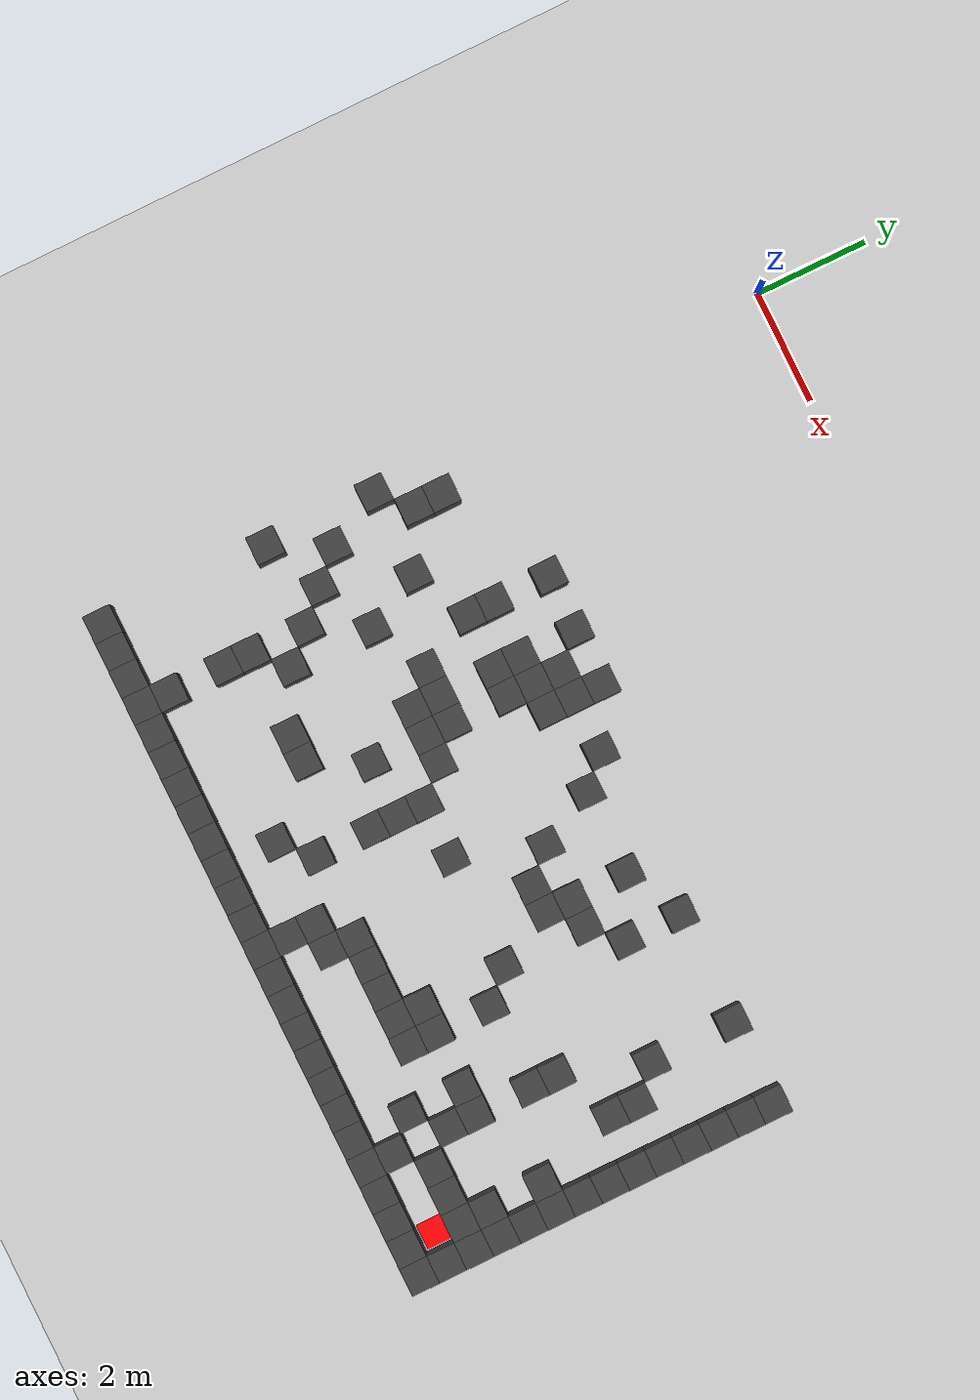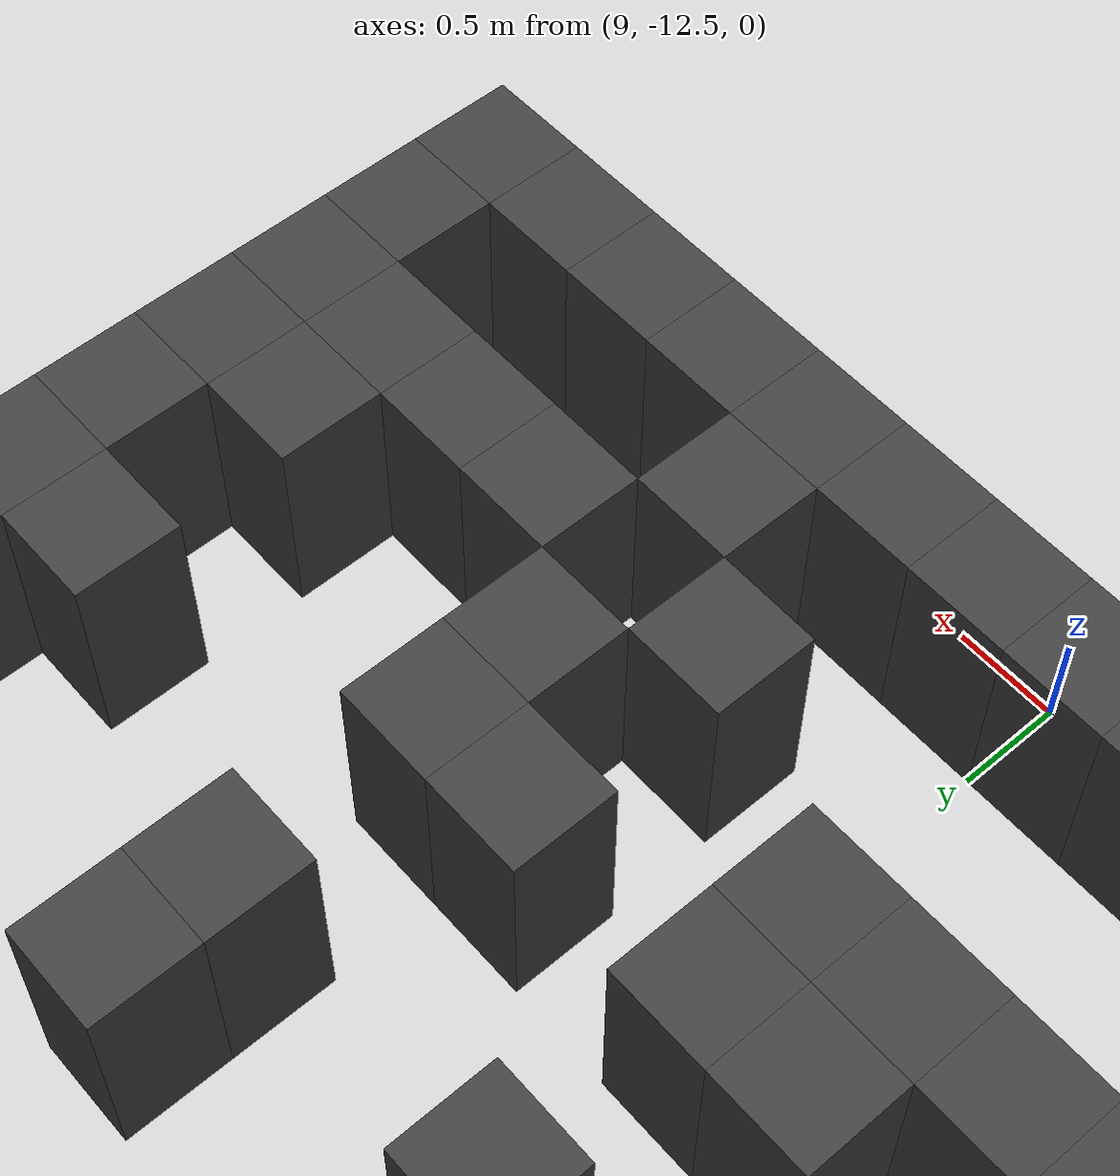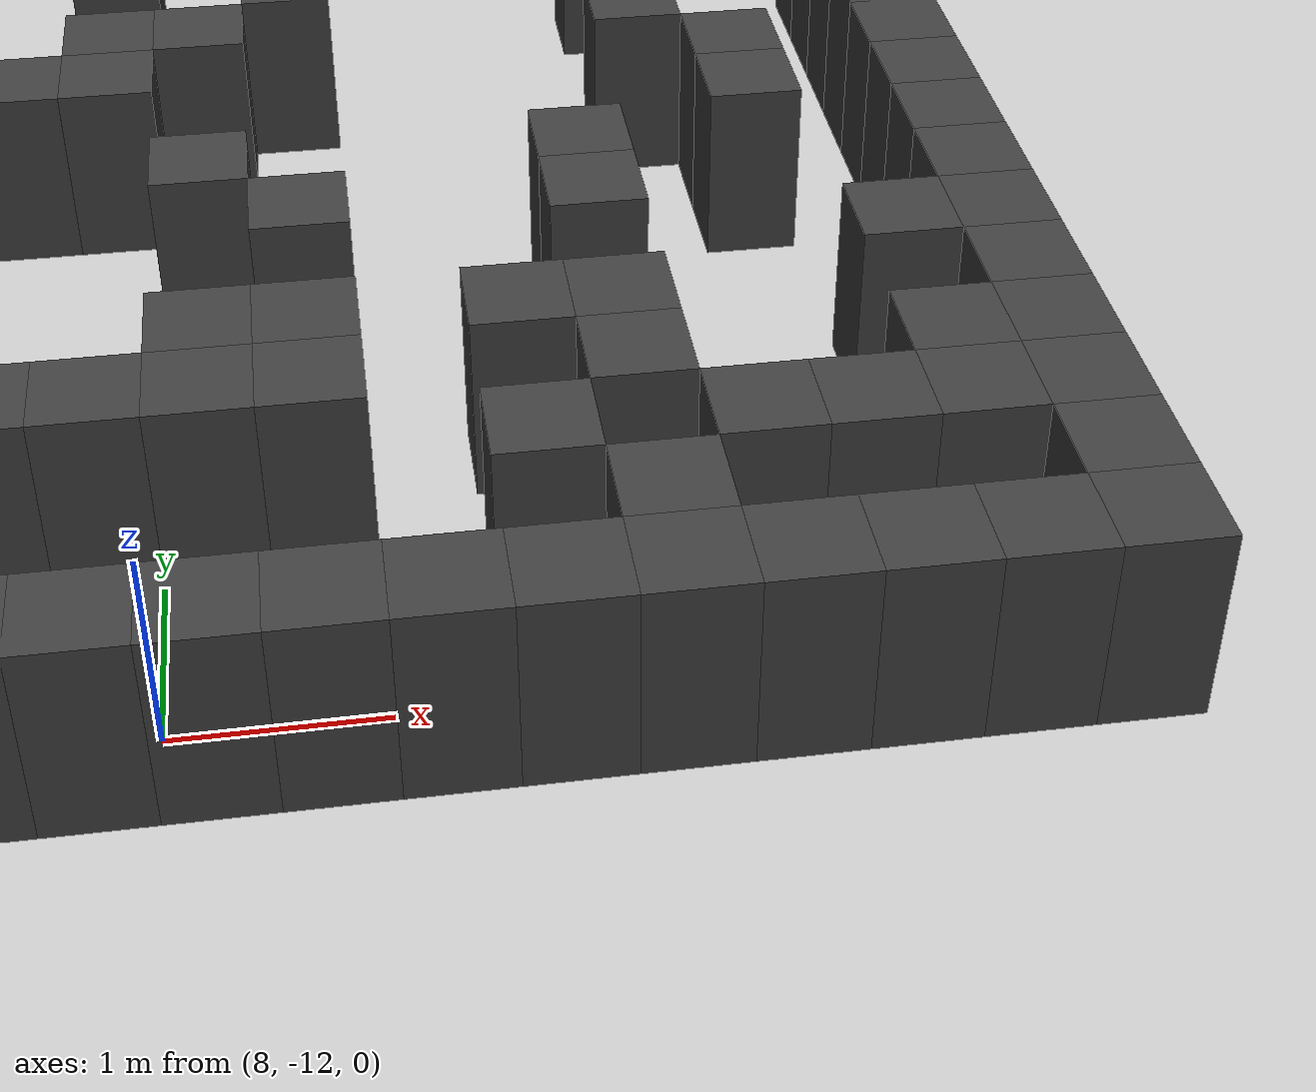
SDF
<sdf version="1.7">
 <world name="map_4581">
  <model name="ground_plane">
   <static>true</static>
   <link name="link">
    <collision name="collision">
     <geometry><plane><normal>0 0 1</normal><size>200 200</size></plane></geometry>
    </collision>
    <visual name="visual">
     <geometry><plane><normal>0 0 1</normal><size>200 200</size></plane></geometry>
     <material><ambient>0.8 0.8 0.8 1</ambient><diffuse>0.8 0.8 0.8 1</diffuse></material>
    </visual>
   </link>
  </model>
  <model name="maze_environment">
   <static>true</static>
   <link name="wall_482">
    <pose>2.750 -5.250 0.500 0 0 0</pose>
    <collision name="col"><geometry><box><size>0.5 0.5 1.0</size></box></geometry></collision>
    <visual name="vis">
     <geometry><box><size>0.5 0.5 1.0</size></box></geometry>
     <material><ambient>0.15 0.15 0.15 1</ambient><diffuse>0.25 0.25 0.25 1</diffuse></material>
    </visual>
   </link>
   <link name="wall_483">
    <pose>3.750 -5.250 0.500 0 0 0</pose>
    <collision name="col"><geometry><box><size>0.5 0.5 1.0</size></box></geometry></collision>
    <visual name="vis">
     <geometry><box><size>0.5 0.5 1.0</size></box></geometry>
     <material><ambient>0.15 0.15 0.15 1</ambient><diffuse>0.25 0.25 0.25 1</diffuse></material>
    </visual>
   </link>
   <link name="wall_484">
    <pose>4.750 -5.250 0.500 0 0 0</pose>
    <collision name="col"><geometry><box><size>0.5 0.5 1.0</size></box></geometry></collision>
    <visual name="vis">
     <geometry><box><size>0.5 0.5 1.0</size></box></geometry>
     <material><ambient>0.15 0.15 0.15 1</ambient><diffuse>0.25 0.25 0.25 1</diffuse></material>
    </visual>
   </link>
   <link name="wall_495">
    <pose>4.250 -5.750 0.500 0 0 0</pose>
    <collision name="col"><geometry><box><size>0.5 0.5 1.0</size></box></geometry></collision>
    <visual name="vis">
     <geometry><box><size>0.5 0.5 1.0</size></box></geometry>
     <material><ambient>0.15 0.15 0.15 1</ambient><diffuse>0.25 0.25 0.25 1</diffuse></material>
    </visual>
   </link>
   <link name="wall_496">
    <pose>4.750 -5.750 0.500 0 0 0</pose>
    <collision name="col"><geometry><box><size>0.5 0.5 1.0</size></box></geometry></collision>
    <visual name="vis">
     <geometry><box><size>0.5 0.5 1.0</size></box></geometry>
     <material><ambient>0.15 0.15 0.15 1</ambient><diffuse>0.25 0.25 0.25 1</diffuse></material>
    </visual>
   </link>
   <link name="wall_497">
    <pose>5.750 -5.750 0.500 0 0 0</pose>
    <collision name="col"><geometry><box><size>0.5 0.5 1.0</size></box></geometry></collision>
    <visual name="vis">
     <geometry><box><size>0.5 0.5 1.0</size></box></geometry>
     <material><ambient>0.15 0.15 0.15 1</ambient><diffuse>0.25 0.25 0.25 1</diffuse></material>
    </visual>
   </link>
   <link name="wall_498">
    <pose>8.750 -5.750 0.500 0 0 0</pose>
    <collision name="col"><geometry><box><size>0.5 0.5 1.0</size></box></geometry></collision>
    <visual name="vis">
     <geometry><box><size>0.5 0.5 1.0</size></box></geometry>
     <material><ambient>0.15 0.15 0.15 1</ambient><diffuse>0.25 0.25 0.25 1</diffuse></material>
    </visual>
   </link>
   <link name="wall_499">
    <pose>10.750 -5.750 0.500 0 0 0</pose>
    <collision name="col"><geometry><box><size>0.5 0.5 1.0</size></box></geometry></collision>
    <visual name="vis">
     <geometry><box><size>0.5 0.5 1.0</size></box></geometry>
     <material><ambient>0.15 0.15 0.15 1</ambient><diffuse>0.25 0.25 0.25 1</diffuse></material>
    </visual>
   </link>
   <link name="wall_500">
    <pose>12.250 -5.750 0.500 0 0 0</pose>
    <collision name="col"><geometry><box><size>0.5 0.5 1.0</size></box></geometry></collision>
    <visual name="vis">
     <geometry><box><size>0.5 0.5 1.0</size></box></geometry>
     <material><ambient>0.15 0.15 0.15 1</ambient><diffuse>0.25 0.25 0.25 1</diffuse></material>
    </visual>
   </link>
   <link name="wall_508">
    <pose>0.750 -6.250 0.500 0 0 0</pose>
    <collision name="col"><geometry><box><size>0.5 0.5 1.0</size></box></geometry></collision>
    <visual name="vis">
     <geometry><box><size>0.5 0.5 1.0</size></box></geometry>
     <material><ambient>0.15 0.15 0.15 1</ambient><diffuse>0.25 0.25 0.25 1</diffuse></material>
    </visual>
   </link>
   <link name="wall_509">
    <pose>2.750 -6.250 0.500 0 0 0</pose>
    <collision name="col"><geometry><box><size>0.5 0.5 1.0</size></box></geometry></collision>
    <visual name="vis">
     <geometry><box><size>0.5 0.5 1.0</size></box></geometry>
     <material><ambient>0.15 0.15 0.15 1</ambient><diffuse>0.25 0.25 0.25 1</diffuse></material>
    </visual>
   </link>
   <link name="wall_510">
    <pose>3.750 -6.250 0.500 0 0 0</pose>
    <collision name="col"><geometry><box><size>0.5 0.5 1.0</size></box></geometry></collision>
    <visual name="vis">
     <geometry><box><size>0.5 0.5 1.0</size></box></geometry>
     <material><ambient>0.15 0.15 0.15 1</ambient><diffuse>0.25 0.25 0.25 1</diffuse></material>
    </visual>
   </link>
   <link name="wall_511">
    <pose>4.250 -6.250 0.500 0 0 0</pose>
    <collision name="col"><geometry><box><size>0.5 0.5 1.0</size></box></geometry></collision>
    <visual name="vis">
     <geometry><box><size>0.5 0.5 1.0</size></box></geometry>
     <material><ambient>0.15 0.15 0.15 1</ambient><diffuse>0.25 0.25 0.25 1</diffuse></material>
    </visual>
   </link>
   <link name="wall_512">
    <pose>4.750 -6.250 0.500 0 0 0</pose>
    <collision name="col"><geometry><box><size>0.5 0.5 1.0</size></box></geometry></collision>
    <visual name="vis">
     <geometry><box><size>0.5 0.5 1.0</size></box></geometry>
     <material><ambient>0.15 0.15 0.15 1</ambient><diffuse>0.25 0.25 0.25 1</diffuse></material>
    </visual>
   </link>
   <link name="wall_513">
    <pose>6.250 -6.250 0.500 0 0 0</pose>
    <collision name="col"><geometry><box><size>0.5 0.5 1.0</size></box></geometry></collision>
    <visual name="vis">
     <geometry><box><size>0.5 0.5 1.0</size></box></geometry>
     <material><ambient>0.15 0.15 0.15 1</ambient><diffuse>0.25 0.25 0.25 1</diffuse></material>
    </visual>
   </link>
   <link name="wall_514">
    <pose>7.750 -6.250 0.500 0 0 0</pose>
    <collision name="col"><geometry><box><size>0.5 0.5 1.0</size></box></geometry></collision>
    <visual name="vis">
     <geometry><box><size>0.5 0.5 1.0</size></box></geometry>
     <material><ambient>0.15 0.15 0.15 1</ambient><diffuse>0.25 0.25 0.25 1</diffuse></material>
    </visual>
   </link>
   <link name="wall_515">
    <pose>12.250 -6.250 0.500 0 0 0</pose>
    <collision name="col"><geometry><box><size>0.5 0.5 1.0</size></box></geometry></collision>
    <visual name="vis">
     <geometry><box><size>0.5 0.5 1.0</size></box></geometry>
     <material><ambient>0.15 0.15 0.15 1</ambient><diffuse>0.25 0.25 0.25 1</diffuse></material>
    </visual>
   </link>
   <link name="wall_519">
    <pose>0.750 -6.750 0.500 0 0 0</pose>
    <collision name="col"><geometry><box><size>0.5 0.5 1.0</size></box></geometry></collision>
    <visual name="vis">
     <geometry><box><size>0.5 0.5 1.0</size></box></geometry>
     <material><ambient>0.15 0.15 0.15 1</ambient><diffuse>0.25 0.25 0.25 1</diffuse></material>
    </visual>
   </link>
   <link name="wall_520">
    <pose>2.750 -6.750 0.500 0 0 0</pose>
    <collision name="col"><geometry><box><size>0.5 0.5 1.0</size></box></geometry></collision>
    <visual name="vis">
     <geometry><box><size>0.5 0.5 1.0</size></box></geometry>
     <material><ambient>0.15 0.15 0.15 1</ambient><diffuse>0.25 0.25 0.25 1</diffuse></material>
    </visual>
   </link>
   <link name="wall_521">
    <pose>3.750 -6.750 0.500 0 0 0</pose>
    <collision name="col"><geometry><box><size>0.5 0.5 1.0</size></box></geometry></collision>
    <visual name="vis">
     <geometry><box><size>0.5 0.5 1.0</size></box></geometry>
     <material><ambient>0.15 0.15 0.15 1</ambient><diffuse>0.25 0.25 0.25 1</diffuse></material>
    </visual>
   </link>
   <link name="wall_522">
    <pose>4.250 -6.750 0.500 0 0 0</pose>
    <collision name="col"><geometry><box><size>0.5 0.5 1.0</size></box></geometry></collision>
    <visual name="vis">
     <geometry><box><size>0.5 0.5 1.0</size></box></geometry>
     <material><ambient>0.15 0.15 0.15 1</ambient><diffuse>0.25 0.25 0.25 1</diffuse></material>
    </visual>
   </link>
   <link name="wall_523">
    <pose>8.750 -6.750 0.500 0 0 0</pose>
    <collision name="col"><geometry><box><size>0.5 0.5 1.0</size></box></geometry></collision>
    <visual name="vis">
     <geometry><box><size>0.5 0.5 1.0</size></box></geometry>
     <material><ambient>0.15 0.15 0.15 1</ambient><diffuse>0.25 0.25 0.25 1</diffuse></material>
    </visual>
   </link>
   <link name="wall_524">
    <pose>12.250 -6.750 0.500 0 0 0</pose>
    <collision name="col"><geometry><box><size>0.5 0.5 1.0</size></box></geometry></collision>
    <visual name="vis">
     <geometry><box><size>0.5 0.5 1.0</size></box></geometry>
     <material><ambient>0.15 0.15 0.15 1</ambient><diffuse>0.25 0.25 0.25 1</diffuse></material>
    </visual>
   </link>
   <link name="wall_534">
    <pose>0.250 -7.250 0.500 0 0 0</pose>
    <collision name="col"><geometry><box><size>0.5 0.5 1.0</size></box></geometry></collision>
    <visual name="vis">
     <geometry><box><size>0.5 0.5 1.0</size></box></geometry>
     <material><ambient>0.15 0.15 0.15 1</ambient><diffuse>0.25 0.25 0.25 1</diffuse></material>
    </visual>
   </link>
   <link name="wall_535">
    <pose>1.750 -7.250 0.500 0 0 0</pose>
    <collision name="col"><geometry><box><size>0.5 0.5 1.0</size></box></geometry></collision>
    <visual name="vis">
     <geometry><box><size>0.5 0.5 1.0</size></box></geometry>
     <material><ambient>0.15 0.15 0.15 1</ambient><diffuse>0.25 0.25 0.25 1</diffuse></material>
    </visual>
   </link>
   <link name="wall_536">
    <pose>6.750 -7.250 0.500 0 0 0</pose>
    <collision name="col"><geometry><box><size>0.5 0.5 1.0</size></box></geometry></collision>
    <visual name="vis">
     <geometry><box><size>0.5 0.5 1.0</size></box></geometry>
     <material><ambient>0.15 0.15 0.15 1</ambient><diffuse>0.25 0.25 0.25 1</diffuse></material>
    </visual>
   </link>
   <link name="wall_537">
    <pose>7.750 -7.250 0.500 0 0 0</pose>
    <collision name="col"><geometry><box><size>0.5 0.5 1.0</size></box></geometry></collision>
    <visual name="vis">
     <geometry><box><size>0.5 0.5 1.0</size></box></geometry>
     <material><ambient>0.15 0.15 0.15 1</ambient><diffuse>0.25 0.25 0.25 1</diffuse></material>
    </visual>
   </link>
   <link name="wall_538">
    <pose>8.250 -7.250 0.500 0 0 0</pose>
    <collision name="col"><geometry><box><size>0.5 0.5 1.0</size></box></geometry></collision>
    <visual name="vis">
     <geometry><box><size>0.5 0.5 1.0</size></box></geometry>
     <material><ambient>0.15 0.15 0.15 1</ambient><diffuse>0.25 0.25 0.25 1</diffuse></material>
    </visual>
   </link>
   <link name="wall_539">
    <pose>10.750 -7.250 0.500 0 0 0</pose>
    <collision name="col"><geometry><box><size>0.5 0.5 1.0</size></box></geometry></collision>
    <visual name="vis">
     <geometry><box><size>0.5 0.5 1.0</size></box></geometry>
     <material><ambient>0.15 0.15 0.15 1</ambient><diffuse>0.25 0.25 0.25 1</diffuse></material>
    </visual>
   </link>
   <link name="wall_540">
    <pose>12.250 -7.250 0.500 0 0 0</pose>
    <collision name="col"><geometry><box><size>0.5 0.5 1.0</size></box></geometry></collision>
    <visual name="vis">
     <geometry><box><size>0.5 0.5 1.0</size></box></geometry>
     <material><ambient>0.15 0.15 0.15 1</ambient><diffuse>0.25 0.25 0.25 1</diffuse></material>
    </visual>
   </link>
   <link name="wall_548">
    <pose>3.250 -7.750 0.500 0 0 0</pose>
    <collision name="col"><geometry><box><size>0.5 0.5 1.0</size></box></geometry></collision>
    <visual name="vis">
     <geometry><box><size>0.5 0.5 1.0</size></box></geometry>
     <material><ambient>0.15 0.15 0.15 1</ambient><diffuse>0.25 0.25 0.25 1</diffuse></material>
    </visual>
   </link>
   <link name="wall_549">
    <pose>3.750 -7.750 0.500 0 0 0</pose>
    <collision name="col"><geometry><box><size>0.5 0.5 1.0</size></box></geometry></collision>
    <visual name="vis">
     <geometry><box><size>0.5 0.5 1.0</size></box></geometry>
     <material><ambient>0.15 0.15 0.15 1</ambient><diffuse>0.25 0.25 0.25 1</diffuse></material>
    </visual>
   </link>
   <link name="wall_550">
    <pose>4.250 -7.750 0.500 0 0 0</pose>
    <collision name="col"><geometry><box><size>0.5 0.5 1.0</size></box></geometry></collision>
    <visual name="vis">
     <geometry><box><size>0.5 0.5 1.0</size></box></geometry>
     <material><ambient>0.15 0.15 0.15 1</ambient><diffuse>0.25 0.25 0.25 1</diffuse></material>
    </visual>
   </link>
   <link name="wall_551">
    <pose>7.250 -7.750 0.500 0 0 0</pose>
    <collision name="col"><geometry><box><size>0.5 0.5 1.0</size></box></geometry></collision>
    <visual name="vis">
     <geometry><box><size>0.5 0.5 1.0</size></box></geometry>
     <material><ambient>0.15 0.15 0.15 1</ambient><diffuse>0.25 0.25 0.25 1</diffuse></material>
    </visual>
   </link>
   <link name="wall_552">
    <pose>7.750 -7.750 0.500 0 0 0</pose>
    <collision name="col"><geometry><box><size>0.5 0.5 1.0</size></box></geometry></collision>
    <visual name="vis">
     <geometry><box><size>0.5 0.5 1.0</size></box></geometry>
     <material><ambient>0.15 0.15 0.15 1</ambient><diffuse>0.25 0.25 0.25 1</diffuse></material>
    </visual>
   </link>
   <link name="wall_553">
    <pose>11.250 -7.750 0.500 0 0 0</pose>
    <collision name="col"><geometry><box><size>0.5 0.5 1.0</size></box></geometry></collision>
    <visual name="vis">
     <geometry><box><size>0.5 0.5 1.0</size></box></geometry>
     <material><ambient>0.15 0.15 0.15 1</ambient><diffuse>0.25 0.25 0.25 1</diffuse></material>
    </visual>
   </link>
   <link name="wall_554">
    <pose>12.250 -7.750 0.500 0 0 0</pose>
    <collision name="col"><geometry><box><size>0.5 0.5 1.0</size></box></geometry></collision>
    <visual name="vis">
     <geometry><box><size>0.5 0.5 1.0</size></box></geometry>
     <material><ambient>0.15 0.15 0.15 1</ambient><diffuse>0.25 0.25 0.25 1</diffuse></material>
    </visual>
   </link>
   <link name="wall_561">
    <pose>0.750 -8.250 0.500 0 0 0</pose>
    <collision name="col"><geometry><box><size>0.5 0.5 1.0</size></box></geometry></collision>
    <visual name="vis">
     <geometry><box><size>0.5 0.5 1.0</size></box></geometry>
     <material><ambient>0.15 0.15 0.15 1</ambient><diffuse>0.25 0.25 0.25 1</diffuse></material>
    </visual>
   </link>
   <link name="wall_562">
    <pose>2.250 -8.250 0.500 0 0 0</pose>
    <collision name="col"><geometry><box><size>0.5 0.5 1.0</size></box></geometry></collision>
    <visual name="vis">
     <geometry><box><size>0.5 0.5 1.0</size></box></geometry>
     <material><ambient>0.15 0.15 0.15 1</ambient><diffuse>0.25 0.25 0.25 1</diffuse></material>
    </visual>
   </link>
   <link name="wall_563">
    <pose>3.750 -8.250 0.500 0 0 0</pose>
    <collision name="col"><geometry><box><size>0.5 0.5 1.0</size></box></geometry></collision>
    <visual name="vis">
     <geometry><box><size>0.5 0.5 1.0</size></box></geometry>
     <material><ambient>0.15 0.15 0.15 1</ambient><diffuse>0.25 0.25 0.25 1</diffuse></material>
    </visual>
   </link>
   <link name="wall_564">
    <pose>4.250 -8.250 0.500 0 0 0</pose>
    <collision name="col"><geometry><box><size>0.5 0.5 1.0</size></box></geometry></collision>
    <visual name="vis">
     <geometry><box><size>0.5 0.5 1.0</size></box></geometry>
     <material><ambient>0.15 0.15 0.15 1</ambient><diffuse>0.25 0.25 0.25 1</diffuse></material>
    </visual>
   </link>
   <link name="wall_565">
    <pose>4.750 -8.250 0.500 0 0 0</pose>
    <collision name="col"><geometry><box><size>0.5 0.5 1.0</size></box></geometry></collision>
    <visual name="vis">
     <geometry><box><size>0.5 0.5 1.0</size></box></geometry>
     <material><ambient>0.15 0.15 0.15 1</ambient><diffuse>0.25 0.25 0.25 1</diffuse></material>
    </visual>
   </link>
   <link name="wall_566">
    <pose>11.250 -8.250 0.500 0 0 0</pose>
    <collision name="col"><geometry><box><size>0.5 0.5 1.0</size></box></geometry></collision>
    <visual name="vis">
     <geometry><box><size>0.5 0.5 1.0</size></box></geometry>
     <material><ambient>0.15 0.15 0.15 1</ambient><diffuse>0.25 0.25 0.25 1</diffuse></material>
    </visual>
   </link>
   <link name="wall_567">
    <pose>12.250 -8.250 0.500 0 0 0</pose>
    <collision name="col"><geometry><box><size>0.5 0.5 1.0</size></box></geometry></collision>
    <visual name="vis">
     <geometry><box><size>0.5 0.5 1.0</size></box></geometry>
     <material><ambient>0.15 0.15 0.15 1</ambient><diffuse>0.25 0.25 0.25 1</diffuse></material>
    </visual>
   </link>
   <link name="wall_574">
    <pose>1.250 -8.750 0.500 0 0 0</pose>
    <collision name="col"><geometry><box><size>0.5 0.5 1.0</size></box></geometry></collision>
    <visual name="vis">
     <geometry><box><size>0.5 0.5 1.0</size></box></geometry>
     <material><ambient>0.15 0.15 0.15 1</ambient><diffuse>0.25 0.25 0.25 1</diffuse></material>
    </visual>
   </link>
   <link name="wall_575">
    <pose>5.250 -8.750 0.500 0 0 0</pose>
    <collision name="col"><geometry><box><size>0.5 0.5 1.0</size></box></geometry></collision>
    <visual name="vis">
     <geometry><box><size>0.5 0.5 1.0</size></box></geometry>
     <material><ambient>0.15 0.15 0.15 1</ambient><diffuse>0.25 0.25 0.25 1</diffuse></material>
    </visual>
   </link>
   <link name="wall_576">
    <pose>6.250 -8.750 0.500 0 0 0</pose>
    <collision name="col"><geometry><box><size>0.5 0.5 1.0</size></box></geometry></collision>
    <visual name="vis">
     <geometry><box><size>0.5 0.5 1.0</size></box></geometry>
     <material><ambient>0.15 0.15 0.15 1</ambient><diffuse>0.25 0.25 0.25 1</diffuse></material>
    </visual>
   </link>
   <link name="wall_577">
    <pose>8.250 -8.750 0.500 0 0 0</pose>
    <collision name="col"><geometry><box><size>0.5 0.5 1.0</size></box></geometry></collision>
    <visual name="vis">
     <geometry><box><size>0.5 0.5 1.0</size></box></geometry>
     <material><ambient>0.15 0.15 0.15 1</ambient><diffuse>0.25 0.25 0.25 1</diffuse></material>
    </visual>
   </link>
   <link name="wall_578">
    <pose>10.250 -8.750 0.500 0 0 0</pose>
    <collision name="col"><geometry><box><size>0.5 0.5 1.0</size></box></geometry></collision>
    <visual name="vis">
     <geometry><box><size>0.5 0.5 1.0</size></box></geometry>
     <material><ambient>0.15 0.15 0.15 1</ambient><diffuse>0.25 0.25 0.25 1</diffuse></material>
    </visual>
   </link>
   <link name="wall_579">
    <pose>12.250 -8.750 0.500 0 0 0</pose>
    <collision name="col"><geometry><box><size>0.5 0.5 1.0</size></box></geometry></collision>
    <visual name="vis">
     <geometry><box><size>0.5 0.5 1.0</size></box></geometry>
     <material><ambient>0.15 0.15 0.15 1</ambient><diffuse>0.25 0.25 0.25 1</diffuse></material>
    </visual>
   </link>
   <link name="wall_585">
    <pose>0.250 -9.250 0.500 0 0 0</pose>
    <collision name="col"><geometry><box><size>0.5 0.5 1.0</size></box></geometry></collision>
    <visual name="vis">
     <geometry><box><size>0.5 0.5 1.0</size></box></geometry>
     <material><ambient>0.15 0.15 0.15 1</ambient><diffuse>0.25 0.25 0.25 1</diffuse></material>
    </visual>
   </link>
   <link name="wall_586">
    <pose>1.750 -9.250 0.500 0 0 0</pose>
    <collision name="col"><geometry><box><size>0.5 0.5 1.0</size></box></geometry></collision>
    <visual name="vis">
     <geometry><box><size>0.5 0.5 1.0</size></box></geometry>
     <material><ambient>0.15 0.15 0.15 1</ambient><diffuse>0.25 0.25 0.25 1</diffuse></material>
    </visual>
   </link>
   <link name="wall_587">
    <pose>4.250 -9.250 0.500 0 0 0</pose>
    <collision name="col"><geometry><box><size>0.5 0.5 1.0</size></box></geometry></collision>
    <visual name="vis">
     <geometry><box><size>0.5 0.5 1.0</size></box></geometry>
     <material><ambient>0.15 0.15 0.15 1</ambient><diffuse>0.25 0.25 0.25 1</diffuse></material>
    </visual>
   </link>
   <link name="wall_588">
    <pose>5.250 -9.250 0.500 0 0 0</pose>
    <collision name="col"><geometry><box><size>0.5 0.5 1.0</size></box></geometry></collision>
    <visual name="vis">
     <geometry><box><size>0.5 0.5 1.0</size></box></geometry>
     <material><ambient>0.15 0.15 0.15 1</ambient><diffuse>0.25 0.25 0.25 1</diffuse></material>
    </visual>
   </link>
   <link name="wall_589">
    <pose>8.750 -9.250 0.500 0 0 0</pose>
    <collision name="col"><geometry><box><size>0.5 0.5 1.0</size></box></geometry></collision>
    <visual name="vis">
     <geometry><box><size>0.5 0.5 1.0</size></box></geometry>
     <material><ambient>0.15 0.15 0.15 1</ambient><diffuse>0.25 0.25 0.25 1</diffuse></material>
    </visual>
   </link>
   <link name="wall_590">
    <pose>10.250 -9.250 0.500 0 0 0</pose>
    <collision name="col"><geometry><box><size>0.5 0.5 1.0</size></box></geometry></collision>
    <visual name="vis">
     <geometry><box><size>0.5 0.5 1.0</size></box></geometry>
     <material><ambient>0.15 0.15 0.15 1</ambient><diffuse>0.25 0.25 0.25 1</diffuse></material>
    </visual>
   </link>
   <link name="wall_591">
    <pose>12.250 -9.250 0.500 0 0 0</pose>
    <collision name="col"><geometry><box><size>0.5 0.5 1.0</size></box></geometry></collision>
    <visual name="vis">
     <geometry><box><size>0.5 0.5 1.0</size></box></geometry>
     <material><ambient>0.15 0.15 0.15 1</ambient><diffuse>0.25 0.25 0.25 1</diffuse></material>
    </visual>
   </link>
   <link name="wall_596">
    <pose>2.250 -9.750 0.500 0 0 0</pose>
    <collision name="col"><geometry><box><size>0.5 0.5 1.0</size></box></geometry></collision>
    <visual name="vis">
     <geometry><box><size>0.5 0.5 1.0</size></box></geometry>
     <material><ambient>0.15 0.15 0.15 1</ambient><diffuse>0.25 0.25 0.25 1</diffuse></material>
    </visual>
   </link>
   <link name="wall_597">
    <pose>5.250 -9.750 0.500 0 0 0</pose>
    <collision name="col"><geometry><box><size>0.5 0.5 1.0</size></box></geometry></collision>
    <visual name="vis">
     <geometry><box><size>0.5 0.5 1.0</size></box></geometry>
     <material><ambient>0.15 0.15 0.15 1</ambient><diffuse>0.25 0.25 0.25 1</diffuse></material>
    </visual>
   </link>
   <link name="wall_598">
    <pose>11.750 -9.750 0.500 0 0 0</pose>
    <collision name="col"><geometry><box><size>0.5 0.5 1.0</size></box></geometry></collision>
    <visual name="vis">
     <geometry><box><size>0.5 0.5 1.0</size></box></geometry>
     <material><ambient>0.15 0.15 0.15 1</ambient><diffuse>0.25 0.25 0.25 1</diffuse></material>
    </visual>
   </link>
   <link name="wall_599">
    <pose>12.250 -9.750 0.500 0 0 0</pose>
    <collision name="col"><geometry><box><size>0.5 0.5 1.0</size></box></geometry></collision>
    <visual name="vis">
     <geometry><box><size>0.5 0.5 1.0</size></box></geometry>
     <material><ambient>0.15 0.15 0.15 1</ambient><diffuse>0.25 0.25 0.25 1</diffuse></material>
    </visual>
   </link>
   <link name="wall_604">
    <pose>1.750 -10.250 0.500 0 0 0</pose>
    <collision name="col"><geometry><box><size>0.5 0.5 1.0</size></box></geometry></collision>
    <visual name="vis">
     <geometry><box><size>0.5 0.5 1.0</size></box></geometry>
     <material><ambient>0.15 0.15 0.15 1</ambient><diffuse>0.25 0.25 0.25 1</diffuse></material>
    </visual>
   </link>
   <link name="wall_605">
    <pose>3.250 -10.250 0.500 0 0 0</pose>
    <collision name="col"><geometry><box><size>0.5 0.5 1.0</size></box></geometry></collision>
    <visual name="vis">
     <geometry><box><size>0.5 0.5 1.0</size></box></geometry>
     <material><ambient>0.15 0.15 0.15 1</ambient><diffuse>0.25 0.25 0.25 1</diffuse></material>
    </visual>
   </link>
   <link name="wall_606">
    <pose>3.750 -10.250 0.500 0 0 0</pose>
    <collision name="col"><geometry><box><size>0.5 0.5 1.0</size></box></geometry></collision>
    <visual name="vis">
     <geometry><box><size>0.5 0.5 1.0</size></box></geometry>
     <material><ambient>0.15 0.15 0.15 1</ambient><diffuse>0.25 0.25 0.25 1</diffuse></material>
    </visual>
   </link>
   <link name="wall_607">
    <pose>8.250 -10.250 0.500 0 0 0</pose>
    <collision name="col"><geometry><box><size>0.5 0.5 1.0</size></box></geometry></collision>
    <visual name="vis">
     <geometry><box><size>0.5 0.5 1.0</size></box></geometry>
     <material><ambient>0.15 0.15 0.15 1</ambient><diffuse>0.25 0.25 0.25 1</diffuse></material>
    </visual>
   </link>
   <link name="wall_608">
    <pose>8.750 -10.250 0.500 0 0 0</pose>
    <collision name="col"><geometry><box><size>0.5 0.5 1.0</size></box></geometry></collision>
    <visual name="vis">
     <geometry><box><size>0.5 0.5 1.0</size></box></geometry>
     <material><ambient>0.15 0.15 0.15 1</ambient><diffuse>0.25 0.25 0.25 1</diffuse></material>
    </visual>
   </link>
   <link name="wall_609">
    <pose>9.750 -10.250 0.500 0 0 0</pose>
    <collision name="col"><geometry><box><size>0.5 0.5 1.0</size></box></geometry></collision>
    <visual name="vis">
     <geometry><box><size>0.5 0.5 1.0</size></box></geometry>
     <material><ambient>0.15 0.15 0.15 1</ambient><diffuse>0.25 0.25 0.25 1</diffuse></material>
    </visual>
   </link>
   <link name="wall_610">
    <pose>10.250 -10.250 0.500 0 0 0</pose>
    <collision name="col"><geometry><box><size>0.5 0.5 1.0</size></box></geometry></collision>
    <visual name="vis">
     <geometry><box><size>0.5 0.5 1.0</size></box></geometry>
     <material><ambient>0.15 0.15 0.15 1</ambient><diffuse>0.25 0.25 0.25 1</diffuse></material>
    </visual>
   </link>
   <link name="wall_611">
    <pose>12.250 -10.250 0.500 0 0 0</pose>
    <collision name="col"><geometry><box><size>0.5 0.5 1.0</size></box></geometry></collision>
    <visual name="vis">
     <geometry><box><size>0.5 0.5 1.0</size></box></geometry>
     <material><ambient>0.15 0.15 0.15 1</ambient><diffuse>0.25 0.25 0.25 1</diffuse></material>
    </visual>
   </link>
   <link name="wall_617">
    <pose>1.750 -10.750 0.500 0 0 0</pose>
    <collision name="col"><geometry><box><size>0.5 0.5 1.0</size></box></geometry></collision>
    <visual name="vis">
     <geometry><box><size>0.5 0.5 1.0</size></box></geometry>
     <material><ambient>0.15 0.15 0.15 1</ambient><diffuse>0.25 0.25 0.25 1</diffuse></material>
    </visual>
   </link>
   <link name="wall_618">
    <pose>5.250 -10.750 0.500 0 0 0</pose>
    <collision name="col"><geometry><box><size>0.5 0.5 1.0</size></box></geometry></collision>
    <visual name="vis">
     <geometry><box><size>0.5 0.5 1.0</size></box></geometry>
     <material><ambient>0.15 0.15 0.15 1</ambient><diffuse>0.25 0.25 0.25 1</diffuse></material>
    </visual>
   </link>
   <link name="wall_619">
    <pose>6.750 -10.750 0.500 0 0 0</pose>
    <collision name="col"><geometry><box><size>0.5 0.5 1.0</size></box></geometry></collision>
    <visual name="vis">
     <geometry><box><size>0.5 0.5 1.0</size></box></geometry>
     <material><ambient>0.15 0.15 0.15 1</ambient><diffuse>0.25 0.25 0.25 1</diffuse></material>
    </visual>
   </link>
   <link name="wall_620">
    <pose>7.250 -10.750 0.500 0 0 0</pose>
    <collision name="col"><geometry><box><size>0.5 0.5 1.0</size></box></geometry></collision>
    <visual name="vis">
     <geometry><box><size>0.5 0.5 1.0</size></box></geometry>
     <material><ambient>0.15 0.15 0.15 1</ambient><diffuse>0.25 0.25 0.25 1</diffuse></material>
    </visual>
   </link>
   <link name="wall_621">
    <pose>7.750 -10.750 0.500 0 0 0</pose>
    <collision name="col"><geometry><box><size>0.5 0.5 1.0</size></box></geometry></collision>
    <visual name="vis">
     <geometry><box><size>0.5 0.5 1.0</size></box></geometry>
     <material><ambient>0.15 0.15 0.15 1</ambient><diffuse>0.25 0.25 0.25 1</diffuse></material>
    </visual>
   </link>
   <link name="wall_622">
    <pose>8.250 -10.750 0.500 0 0 0</pose>
    <collision name="col"><geometry><box><size>0.5 0.5 1.0</size></box></geometry></collision>
    <visual name="vis">
     <geometry><box><size>0.5 0.5 1.0</size></box></geometry>
     <material><ambient>0.15 0.15 0.15 1</ambient><diffuse>0.25 0.25 0.25 1</diffuse></material>
    </visual>
   </link>
   <link name="wall_623">
    <pose>8.750 -10.750 0.500 0 0 0</pose>
    <collision name="col"><geometry><box><size>0.5 0.5 1.0</size></box></geometry></collision>
    <visual name="vis">
     <geometry><box><size>0.5 0.5 1.0</size></box></geometry>
     <material><ambient>0.15 0.15 0.15 1</ambient><diffuse>0.25 0.25 0.25 1</diffuse></material>
    </visual>
   </link>
   <link name="wall_624">
    <pose>10.250 -10.750 0.500 0 0 0</pose>
    <collision name="col"><geometry><box><size>0.5 0.5 1.0</size></box></geometry></collision>
    <visual name="vis">
     <geometry><box><size>0.5 0.5 1.0</size></box></geometry>
     <material><ambient>0.15 0.15 0.15 1</ambient><diffuse>0.25 0.25 0.25 1</diffuse></material>
    </visual>
   </link>
   <link name="wall_625">
    <pose>11.750 -10.750 0.500 0 0 0</pose>
    <collision name="col"><geometry><box><size>0.5 0.5 1.0</size></box></geometry></collision>
    <visual name="vis">
     <geometry><box><size>0.5 0.5 1.0</size></box></geometry>
     <material><ambient>0.15 0.15 0.15 1</ambient><diffuse>0.25 0.25 0.25 1</diffuse></material>
    </visual>
   </link>
   <link name="wall_626">
    <pose>12.250 -10.750 0.500 0 0 0</pose>
    <collision name="col"><geometry><box><size>0.5 0.5 1.0</size></box></geometry></collision>
    <visual name="vis">
     <geometry><box><size>0.5 0.5 1.0</size></box></geometry>
     <material><ambient>0.15 0.15 0.15 1</ambient><diffuse>0.25 0.25 0.25 1</diffuse></material>
    </visual>
   </link>
   <link name="wall_635">
    <pose>4.750 -11.250 0.500 0 0 0</pose>
    <collision name="col"><geometry><box><size>0.5 0.5 1.0</size></box></geometry></collision>
    <visual name="vis">
     <geometry><box><size>0.5 0.5 1.0</size></box></geometry>
     <material><ambient>0.15 0.15 0.15 1</ambient><diffuse>0.25 0.25 0.25 1</diffuse></material>
    </visual>
   </link>
   <link name="wall_636">
    <pose>6.250 -11.250 0.500 0 0 0</pose>
    <collision name="col"><geometry><box><size>0.5 0.5 1.0</size></box></geometry></collision>
    <visual name="vis">
     <geometry><box><size>0.5 0.5 1.0</size></box></geometry>
     <material><ambient>0.15 0.15 0.15 1</ambient><diffuse>0.25 0.25 0.25 1</diffuse></material>
    </visual>
   </link>
   <link name="wall_637">
    <pose>6.750 -11.250 0.500 0 0 0</pose>
    <collision name="col"><geometry><box><size>0.5 0.5 1.0</size></box></geometry></collision>
    <visual name="vis">
     <geometry><box><size>0.5 0.5 1.0</size></box></geometry>
     <material><ambient>0.15 0.15 0.15 1</ambient><diffuse>0.25 0.25 0.25 1</diffuse></material>
    </visual>
   </link>
   <link name="wall_638">
    <pose>9.750 -11.250 0.500 0 0 0</pose>
    <collision name="col"><geometry><box><size>0.5 0.5 1.0</size></box></geometry></collision>
    <visual name="vis">
     <geometry><box><size>0.5 0.5 1.0</size></box></geometry>
     <material><ambient>0.15 0.15 0.15 1</ambient><diffuse>0.25 0.25 0.25 1</diffuse></material>
    </visual>
   </link>
   <link name="wall_639">
    <pose>10.750 -11.250 0.500 0 0 0</pose>
    <collision name="col"><geometry><box><size>0.5 0.5 1.0</size></box></geometry></collision>
    <visual name="vis">
     <geometry><box><size>0.5 0.5 1.0</size></box></geometry>
     <material><ambient>0.15 0.15 0.15 1</ambient><diffuse>0.25 0.25 0.25 1</diffuse></material>
    </visual>
   </link>
   <link name="wall_640">
    <pose>11.250 -11.250 0.500 0 0 0</pose>
    <collision name="col"><geometry><box><size>0.5 0.5 1.0</size></box></geometry></collision>
    <visual name="vis">
     <geometry><box><size>0.5 0.5 1.0</size></box></geometry>
     <material><ambient>0.15 0.15 0.15 1</ambient><diffuse>0.25 0.25 0.25 1</diffuse></material>
    </visual>
   </link>
   <link name="wall_641">
    <pose>11.750 -11.250 0.500 0 0 0</pose>
    <collision name="col"><geometry><box><size>0.5 0.5 1.0</size></box></geometry></collision>
    <visual name="vis">
     <geometry><box><size>0.5 0.5 1.0</size></box></geometry>
     <material><ambient>0.15 0.15 0.15 1</ambient><diffuse>0.25 0.25 0.25 1</diffuse></material>
    </visual>
   </link>
   <link name="wall_642">
    <pose>12.250 -11.250 0.500 0 0 0</pose>
    <collision name="col"><geometry><box><size>0.5 0.5 1.0</size></box></geometry></collision>
    <visual name="vis">
     <geometry><box><size>0.5 0.5 1.0</size></box></geometry>
     <material><ambient>0.15 0.15 0.15 1</ambient><diffuse>0.25 0.25 0.25 1</diffuse></material>
    </visual>
   </link>
   <link name="wall_647">
    <pose>1.750 -11.750 0.500 0 0 0</pose>
    <collision name="col"><geometry><box><size>0.5 0.5 1.0</size></box></geometry></collision>
    <visual name="vis">
     <geometry><box><size>0.5 0.5 1.0</size></box></geometry>
     <material><ambient>0.15 0.15 0.15 1</ambient><diffuse>0.25 0.25 0.25 1</diffuse></material>
    </visual>
   </link>
   <link name="wall_648">
    <pose>6.250 -11.750 0.500 0 0 0</pose>
    <collision name="col"><geometry><box><size>0.5 0.5 1.0</size></box></geometry></collision>
    <visual name="vis">
     <geometry><box><size>0.5 0.5 1.0</size></box></geometry>
     <material><ambient>0.15 0.15 0.15 1</ambient><diffuse>0.25 0.25 0.25 1</diffuse></material>
    </visual>
   </link>
   <link name="wall_649">
    <pose>10.250 -11.750 0.500 0 0 0</pose>
    <collision name="col"><geometry><box><size>0.5 0.5 1.0</size></box></geometry></collision>
    <visual name="vis">
     <geometry><box><size>0.5 0.5 1.0</size></box></geometry>
     <material><ambient>0.15 0.15 0.15 1</ambient><diffuse>0.25 0.25 0.25 1</diffuse></material>
    </visual>
   </link>
   <link name="wall_650">
    <pose>12.250 -11.750 0.500 0 0 0</pose>
    <collision name="col"><geometry><box><size>0.5 0.5 1.0</size></box></geometry></collision>
    <visual name="vis">
     <geometry><box><size>0.5 0.5 1.0</size></box></geometry>
     <material><ambient>0.15 0.15 0.15 1</ambient><diffuse>0.25 0.25 0.25 1</diffuse></material>
    </visual>
   </link>
   <link name="wall_676">
    <pose>0.250 -12.250 0.500 0 0 0</pose>
    <collision name="col"><geometry><box><size>0.5 0.5 1.0</size></box></geometry></collision>
    <visual name="vis">
     <geometry><box><size>0.5 0.5 1.0</size></box></geometry>
     <material><ambient>0.15 0.15 0.15 1</ambient><diffuse>0.25 0.25 0.25 1</diffuse></material>
    </visual>
   </link>
   <link name="wall_677">
    <pose>0.750 -12.250 0.500 0 0 0</pose>
    <collision name="col"><geometry><box><size>0.5 0.5 1.0</size></box></geometry></collision>
    <visual name="vis">
     <geometry><box><size>0.5 0.5 1.0</size></box></geometry>
     <material><ambient>0.15 0.15 0.15 1</ambient><diffuse>0.25 0.25 0.25 1</diffuse></material>
    </visual>
   </link>
   <link name="wall_678">
    <pose>1.250 -12.250 0.500 0 0 0</pose>
    <collision name="col"><geometry><box><size>0.5 0.5 1.0</size></box></geometry></collision>
    <visual name="vis">
     <geometry><box><size>0.5 0.5 1.0</size></box></geometry>
     <material><ambient>0.15 0.15 0.15 1</ambient><diffuse>0.25 0.25 0.25 1</diffuse></material>
    </visual>
   </link>
   <link name="wall_679">
    <pose>1.750 -12.250 0.500 0 0 0</pose>
    <collision name="col"><geometry><box><size>0.5 0.5 1.0</size></box></geometry></collision>
    <visual name="vis">
     <geometry><box><size>0.5 0.5 1.0</size></box></geometry>
     <material><ambient>0.15 0.15 0.15 1</ambient><diffuse>0.25 0.25 0.25 1</diffuse></material>
    </visual>
   </link>
   <link name="wall_680">
    <pose>2.250 -12.250 0.500 0 0 0</pose>
    <collision name="col"><geometry><box><size>0.5 0.5 1.0</size></box></geometry></collision>
    <visual name="vis">
     <geometry><box><size>0.5 0.5 1.0</size></box></geometry>
     <material><ambient>0.15 0.15 0.15 1</ambient><diffuse>0.25 0.25 0.25 1</diffuse></material>
    </visual>
   </link>
   <link name="wall_681">
    <pose>2.750 -12.250 0.500 0 0 0</pose>
    <collision name="col"><geometry><box><size>0.5 0.5 1.0</size></box></geometry></collision>
    <visual name="vis">
     <geometry><box><size>0.5 0.5 1.0</size></box></geometry>
     <material><ambient>0.15 0.15 0.15 1</ambient><diffuse>0.25 0.25 0.25 1</diffuse></material>
    </visual>
   </link>
   <link name="wall_682">
    <pose>3.250 -12.250 0.500 0 0 0</pose>
    <collision name="col"><geometry><box><size>0.5 0.5 1.0</size></box></geometry></collision>
    <visual name="vis">
     <geometry><box><size>0.5 0.5 1.0</size></box></geometry>
     <material><ambient>0.15 0.15 0.15 1</ambient><diffuse>0.25 0.25 0.25 1</diffuse></material>
    </visual>
   </link>
   <link name="wall_683">
    <pose>3.750 -12.250 0.500 0 0 0</pose>
    <collision name="col"><geometry><box><size>0.5 0.5 1.0</size></box></geometry></collision>
    <visual name="vis">
     <geometry><box><size>0.5 0.5 1.0</size></box></geometry>
     <material><ambient>0.15 0.15 0.15 1</ambient><diffuse>0.25 0.25 0.25 1</diffuse></material>
    </visual>
   </link>
   <link name="wall_684">
    <pose>4.250 -12.250 0.500 0 0 0</pose>
    <collision name="col"><geometry><box><size>0.5 0.5 1.0</size></box></geometry></collision>
    <visual name="vis">
     <geometry><box><size>0.5 0.5 1.0</size></box></geometry>
     <material><ambient>0.15 0.15 0.15 1</ambient><diffuse>0.25 0.25 0.25 1</diffuse></material>
    </visual>
   </link>
   <link name="wall_685">
    <pose>4.750 -12.250 0.500 0 0 0</pose>
    <collision name="col"><geometry><box><size>0.5 0.5 1.0</size></box></geometry></collision>
    <visual name="vis">
     <geometry><box><size>0.5 0.5 1.0</size></box></geometry>
     <material><ambient>0.15 0.15 0.15 1</ambient><diffuse>0.25 0.25 0.25 1</diffuse></material>
    </visual>
   </link>
   <link name="wall_686">
    <pose>5.250 -12.250 0.500 0 0 0</pose>
    <collision name="col"><geometry><box><size>0.5 0.5 1.0</size></box></geometry></collision>
    <visual name="vis">
     <geometry><box><size>0.5 0.5 1.0</size></box></geometry>
     <material><ambient>0.15 0.15 0.15 1</ambient><diffuse>0.25 0.25 0.25 1</diffuse></material>
    </visual>
   </link>
   <link name="wall_687">
    <pose>5.750 -12.250 0.500 0 0 0</pose>
    <collision name="col"><geometry><box><size>0.5 0.5 1.0</size></box></geometry></collision>
    <visual name="vis">
     <geometry><box><size>0.5 0.5 1.0</size></box></geometry>
     <material><ambient>0.15 0.15 0.15 1</ambient><diffuse>0.25 0.25 0.25 1</diffuse></material>
    </visual>
   </link>
   <link name="wall_688">
    <pose>6.250 -12.250 0.500 0 0 0</pose>
    <collision name="col"><geometry><box><size>0.5 0.5 1.0</size></box></geometry></collision>
    <visual name="vis">
     <geometry><box><size>0.5 0.5 1.0</size></box></geometry>
     <material><ambient>0.15 0.15 0.15 1</ambient><diffuse>0.25 0.25 0.25 1</diffuse></material>
    </visual>
   </link>
   <link name="wall_689">
    <pose>6.750 -12.250 0.500 0 0 0</pose>
    <collision name="col"><geometry><box><size>0.5 0.5 1.0</size></box></geometry></collision>
    <visual name="vis">
     <geometry><box><size>0.5 0.5 1.0</size></box></geometry>
     <material><ambient>0.15 0.15 0.15 1</ambient><diffuse>0.25 0.25 0.25 1</diffuse></material>
    </visual>
   </link>
   <link name="wall_690">
    <pose>7.250 -12.250 0.500 0 0 0</pose>
    <collision name="col"><geometry><box><size>0.5 0.5 1.0</size></box></geometry></collision>
    <visual name="vis">
     <geometry><box><size>0.5 0.5 1.0</size></box></geometry>
     <material><ambient>0.15 0.15 0.15 1</ambient><diffuse>0.25 0.25 0.25 1</diffuse></material>
    </visual>
   </link>
   <link name="wall_691">
    <pose>7.750 -12.250 0.500 0 0 0</pose>
    <collision name="col"><geometry><box><size>0.5 0.5 1.0</size></box></geometry></collision>
    <visual name="vis">
     <geometry><box><size>0.5 0.5 1.0</size></box></geometry>
     <material><ambient>0.15 0.15 0.15 1</ambient><diffuse>0.25 0.25 0.25 1</diffuse></material>
    </visual>
   </link>
   <link name="wall_692">
    <pose>8.250 -12.250 0.500 0 0 0</pose>
    <collision name="col"><geometry><box><size>0.5 0.5 1.0</size></box></geometry></collision>
    <visual name="vis">
     <geometry><box><size>0.5 0.5 1.0</size></box></geometry>
     <material><ambient>0.15 0.15 0.15 1</ambient><diffuse>0.25 0.25 0.25 1</diffuse></material>
    </visual>
   </link>
   <link name="wall_693">
    <pose>8.750 -12.250 0.500 0 0 0</pose>
    <collision name="col"><geometry><box><size>0.5 0.5 1.0</size></box></geometry></collision>
    <visual name="vis">
     <geometry><box><size>0.5 0.5 1.0</size></box></geometry>
     <material><ambient>0.15 0.15 0.15 1</ambient><diffuse>0.25 0.25 0.25 1</diffuse></material>
    </visual>
   </link>
   <link name="wall_694">
    <pose>9.250 -12.250 0.500 0 0 0</pose>
    <collision name="col"><geometry><box><size>0.5 0.5 1.0</size></box></geometry></collision>
    <visual name="vis">
     <geometry><box><size>0.5 0.5 1.0</size></box></geometry>
     <material><ambient>0.15 0.15 0.15 1</ambient><diffuse>0.25 0.25 0.25 1</diffuse></material>
    </visual>
   </link>
   <link name="wall_695">
    <pose>9.750 -12.250 0.500 0 0 0</pose>
    <collision name="col"><geometry><box><size>0.5 0.5 1.0</size></box></geometry></collision>
    <visual name="vis">
     <geometry><box><size>0.5 0.5 1.0</size></box></geometry>
     <material><ambient>0.15 0.15 0.15 1</ambient><diffuse>0.25 0.25 0.25 1</diffuse></material>
    </visual>
   </link>
   <link name="wall_696">
    <pose>10.250 -12.250 0.500 0 0 0</pose>
    <collision name="col"><geometry><box><size>0.5 0.5 1.0</size></box></geometry></collision>
    <visual name="vis">
     <geometry><box><size>0.5 0.5 1.0</size></box></geometry>
     <material><ambient>0.15 0.15 0.15 1</ambient><diffuse>0.25 0.25 0.25 1</diffuse></material>
    </visual>
   </link>
   <link name="wall_697">
    <pose>10.750 -12.250 0.500 0 0 0</pose>
    <collision name="col"><geometry><box><size>0.5 0.5 1.0</size></box></geometry></collision>
    <visual name="vis">
     <geometry><box><size>0.5 0.5 1.0</size></box></geometry>
     <material><ambient>0.15 0.15 0.15 1</ambient><diffuse>0.25 0.25 0.25 1</diffuse></material>
    </visual>
   </link>
   <link name="wall_698">
    <pose>11.250 -12.250 0.500 0 0 0</pose>
    <collision name="col"><geometry><box><size>0.5 0.5 1.0</size></box></geometry></collision>
    <visual name="vis">
     <geometry><box><size>0.5 0.5 1.0</size></box></geometry>
     <material><ambient>0.15 0.15 0.15 1</ambient><diffuse>0.25 0.25 0.25 1</diffuse></material>
    </visual>
   </link>
   <link name="wall_699">
    <pose>11.750 -12.250 0.500 0 0 0</pose>
    <collision name="col"><geometry><box><size>0.5 0.5 1.0</size></box></geometry></collision>
    <visual name="vis">
     <geometry><box><size>0.5 0.5 1.0</size></box></geometry>
     <material><ambient>0.15 0.15 0.15 1</ambient><diffuse>0.25 0.25 0.25 1</diffuse></material>
    </visual>
   </link>
   <link name="wall_700">
    <pose>12.250 -12.250 0.500 0 0 0</pose>
    <collision name="col"><geometry><box><size>0.5 0.5 1.0</size></box></geometry></collision>
    <visual name="vis">
     <geometry><box><size>0.5 0.5 1.0</size></box></geometry>
     <material><ambient>0.15 0.15 0.15 1</ambient><diffuse>0.25 0.25 0.25 1</diffuse></material>
    </visual>
   </link>
   <link name="goal_zone">
    <pose>11.750 -11.750 0.005 0 0 0</pose>
    <visual name="vis">
     <geometry><box><size>0.45 0.45 0.01</size></box></geometry>
     <material>
      <ambient>1.0 0.0 0.0 1</ambient>
      <diffuse>1.0 0.0 0.0 1</diffuse>
      <emissive>0.60 0.00 0.00 1</emissive>
     </material>
    </visual>
   </link>
  </model>
 </world>
</sdf>
